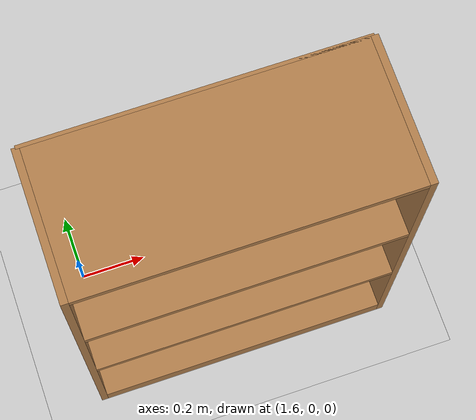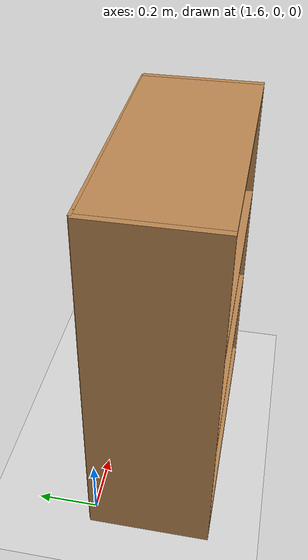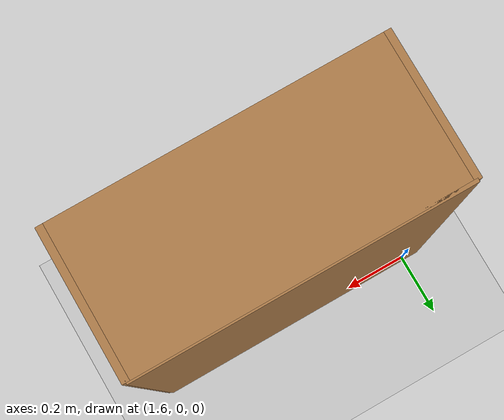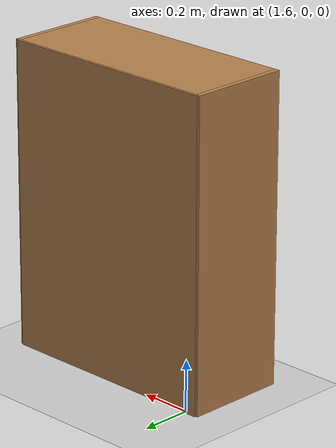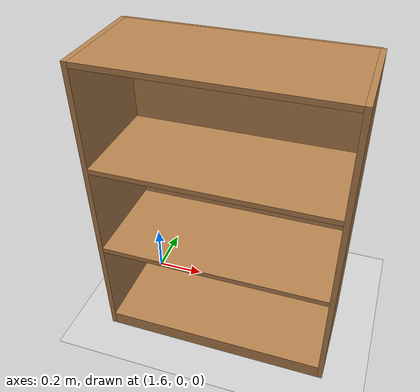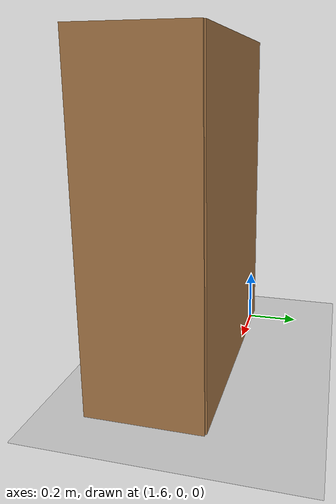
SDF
<?xml version="1.0" ?>
<sdf version="1.6">
  <!-- Minimal test world: flat floor, light, and one static bookshelf only. -->
  <world name="empty_bookshelf">
    <include>
      <!-- z=0 is the floor surface and the bookshelf bottom is placed on it. -->
      <uri>model://ground_plane</uri>
    </include>
    <include>
      <uri>model://sun</uri>
    </include>

    <scene>
      <ambient>0.6 0.6 0.6 1</ambient>
      <background>0.7 0.7 0.7 1</background>
      <shadows>true</shadows>
    </scene>

    <include>
      <uri>model://bookshelf</uri>
      <!-- Position (x=2 m, y=0 m), upright at z=0.  yaw=0 leaves the
           bookshelf opening facing -y, away from the robot's default path. -->
      <pose>2 0 0 0 0 0</pose>
    </include>
  </world>
</sdf>

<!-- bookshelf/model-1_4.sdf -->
<sdf version="1.4">
  <model name="bookshelf">
    <static>true</static>
    <link name="link">
      <inertial>
        <mass>1.0</mass>
      </inertial>
      <collision name="back">
        <pose>0 0.005 0.6 0 0 0</pose>
        <geometry><box><size>0.9 0.01 1.2</size></box></geometry>
      </collision>
      <visual name="back_visual">
        <pose>0 0.005 0.6 0 0 0</pose>
        <geometry><box><size>0.9 0.01 1.2</size></box></geometry>
        <material><script><uri>file://media/materials/scripts/gazebo.material</uri><name>Gazebo/Wood</name></script></material>
      </visual>

      <collision name="left_side">
        <pose>0.45 -0.195 0.6 0 0 0</pose>
        <geometry><box><size>0.02 0.4 1.2</size></box></geometry>
      </collision>
      <visual name="left_side_visual">
        <pose>0.45 -0.195 0.6 0 0 0</pose>
        <geometry><box><size>0.02 0.4 1.2</size></box></geometry>
        <material><script><uri>file://media/materials/scripts/gazebo.material</uri><name>Gazebo/Wood</name></script></material>
      </visual>

      <collision name="right_side">
        <pose>-0.45 -0.195 0.6 0 0 0</pose>
        <geometry><box><size>0.02 0.4 1.2</size></box></geometry>
      </collision>
      <visual name="right_side_visual">
        <pose>-0.45 -0.195 0.6 0 0 0</pose>
        <geometry><box><size>0.02 0.4 1.2</size></box></geometry>
        <material><script><uri>file://media/materials/scripts/gazebo.material</uri><name>Gazebo/Wood</name></script></material>
      </visual>

      <!-- Base, top, and two horizontal dividers form the three shelves. -->
      <collision name="bottom">
        <pose>0 -0.195 0.03 0 0 0</pose>
        <geometry><box><size>0.88 0.4 0.06</size></box></geometry>
      </collision>
      <visual name="bottom_visual">
        <pose>0 -0.195 0.03 0 0 0</pose>
        <geometry><box><size>0.88 0.4 0.06</size></box></geometry>
        <material><script><uri>file://media/materials/scripts/gazebo.material</uri><name>Gazebo/Wood</name></script></material>
      </visual>

      <collision name="top">
        <pose>0 -0.195 1.19 0 0 0</pose>
        <geometry><box><size>0.88 0.4 0.02</size></box></geometry>
      </collision>
      <visual name="top_visual">
        <pose>0 -0.195 1.19 0 0 0</pose>
        <geometry><box><size>0.88 0.4 0.02</size></box></geometry>
        <material><script><uri>file://media/materials/scripts/gazebo.material</uri><name>Gazebo/Wood</name></script></material>
      </visual>

      <collision name="low_shelf">
        <pose>0 -0.195 0.43 0 0 0</pose>
        <geometry><box><size>0.88 0.4 0.02</size></box></geometry>
      </collision>
      <visual name="low_shelf_visual">
        <pose>0 -0.195 0.43 0 0 0</pose>
        <geometry><box><size>0.88 0.4 0.02</size></box></geometry>
        <material><script><uri>file://media/materials/scripts/gazebo.material</uri><name>Gazebo/Wood</name></script></material>
      </visual>

      <collision name="high_shelf">
        <pose>0 -0.195 0.8 0 0 0</pose>
        <geometry><box><size>0.88 0.4 0.02</size></box></geometry>
      </collision>
      <visual name="high_shelf_visual">
        <pose>0 -0.195 0.8 0 0 0</pose>
        <geometry><box><size>0.88 0.4 0.02</size></box></geometry>
        <material><script><uri>file://media/materials/scripts/gazebo.material</uri><name>Gazebo/Wood</name></script></material>
      </visual>
    </link>
  </model>
</sdf>
